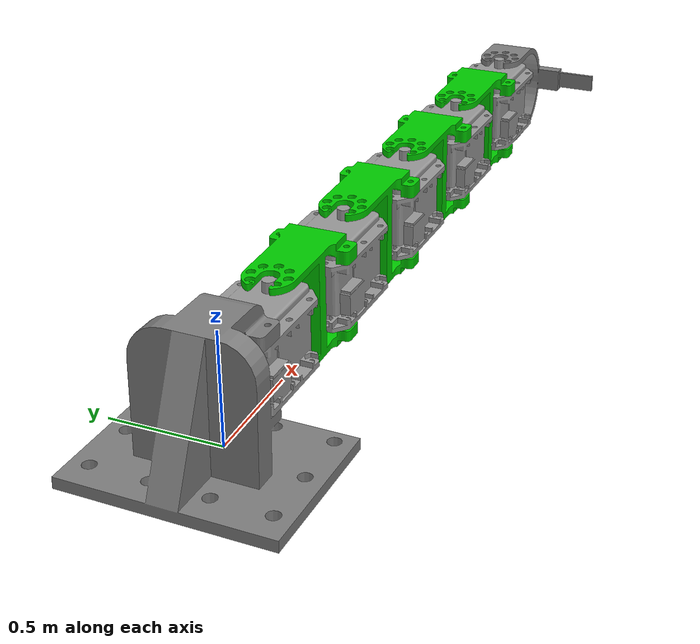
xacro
<?xml version="1.0"?>

<robot xmlns:xacro="http://www.ros.org/wiki/xacro" name="hand_tutorial">

 <xacro:macro name="default_inertial" params="mass">
    <inertial>
      <mass value="${mass}" />
      <inertia ixx="1.0" ixy="0.0" ixz="0.0" iyy="1.0" iyz="0.0" izz="1.0" />
    </inertial>
</xacro:macro>
<link name="world"/>

<link name="base_link">
	<visual>
	<geometry>
	<mesh filename="package://robot_description/meshes/ggwp.stl" />
	</geometry>
	<origin xyz="0 0 -0.05" rpy="0 0 0"/>
  <material name="grey">
    <color rgba="0.5 0.5 0.5 1.0"/>
  </material>
	</visual>
	<collision name="link_collision">
	<geometry>
	<mesh filename ="package://robot_description/meshes/ggwp.stl" />
	</geometry>
	<origin xyz="0 0 -0.05" rpy="0 0 0"/>
	</collision>
	<xacro:default_inertial mass="0.01"/>
</link>

<link name="m2m">
	<visual>
	<geometry>
	<mesh filename="package://robot_description/meshes/short.stl"/>
	</geometry>
	<origin rpy ="0 0 0" xyz="0 0 0"/>
  <material name="green">
    <color rgba="0.0 0.8 0.0 1.0"/>
  </material>
	</visual>
	<collision name="m2m_collision">
	<geometry>
	<mesh filename="package://robot_description/meshes/short.stl"/>
	</geometry>
	<origin rpy ="0 0 0" xyz="0 0 0"/>
	</collision>
	<xacro:default_inertial mass="0.01"/>
</link>

<link name="m2m01">
	<visual>
	<geometry>
	<mesh filename="package://robot_description/meshes/short.stl"/>
	</geometry>
	<origin rpy ="0 0 0" xyz="0 0 0"/>
	  <material name="green">
    <color rgba="0.0 0.8 0.0 1.0"/>
  </material>
	</visual>
	<collision name="m2m_collision01">
	<geometry>
	<mesh filename="package://robot_description/meshes/short.stl"/>
	</geometry>
	<origin rpy ="0 0 0" xyz="0 0 0"/>
	</collision>
	<xacro:default_inertial mass="0.01"/>
</link>

<link name="m2m02">
	<visual>
	<geometry>
	<mesh filename="package://robot_description/meshes/short.stl"/>
	</geometry>
	<origin rpy ="0 0 0" xyz="0 0 0"/>
	  <material name="green">
    <color rgba="0.0 0.8 0.0 1.0"/>
  </material>
	</visual>
	<collision name="m2m_collision01">
	<geometry>
	<mesh filename="package://robot_description/meshes/short.stl"/>
	</geometry>
	<origin rpy ="0 0 0" xyz="0 0 0"/>
	</collision>
	<xacro:default_inertial mass="0.01"/>
</link>

<link name="m2m03">
	<visual>
	<geometry>
	<mesh filename="package://robot_description/meshes/short.stl"/>
	</geometry>
	  <material name="green">
    <color rgba="0.0 0.8 0.0 1.0"/>
  </material>
	<origin rpy ="0 0 0" xyz="0 0 0"/>
	</visual>
	<collision name="m2m_collision01">
	<geometry>
	<mesh filename="package://robot_description/meshes/short.stl"/>
	</geometry>
	<origin rpy ="0 0 0" xyz="0 0 0"/>
	</collision>
	<xacro:default_inertial mass="0.01"/>
</link>

<link name="motor">
	<visual>
	<geometry>
	<mesh filename="package://robot_description/meshes/motor.stl"/>
	</geometry>
	<origin rpy ="0 0 3.14" xyz="0 0 0"/>
	</visual>
	<collision name="motor_collision">
	<geometry>
	<mesh filename="package://robot_description/meshes/motor.stl"/>
	</geometry>
	<origin rpy ="0 0 3.14" xyz="0 0 0"/>
	</collision>
	<xacro:default_inertial mass="0.01"/>
</link>

<link name="motor01">
	<visual>
	<geometry>
	<mesh filename="package://robot_description/meshes/motor.stl"/>
	</geometry>
	<origin rpy ="0 0 3.14" xyz="0 0 0"/>
	</visual>
	<collision name="motor_collision">
	<geometry>
	<mesh filename="package://robot_description/meshes/motor.stl"/>
	</geometry>
	<origin rpy ="0 0 3.14" xyz="0 0 0"/>
	</collision>
	<xacro:default_inertial mass="0.01"/>
</link>

<link name="motor02">
	<visual>
	<geometry>
	<mesh filename="package://robot_description/meshes/motor.stl"/>
	</geometry>
	<origin rpy ="0 0 3.14" xyz="0 0 0"/>
	</visual>
	<collision name="motor_collision">
	<geometry>
	<mesh filename="package://robot_description/meshes/motor.stl"/>
	</geometry>
	<origin rpy ="0 0 3.14" xyz="0 0 0"/>
	</collision>
	<xacro:default_inertial mass="0.01"/>
</link>

<link name="motor03">
	<visual>
	<geometry>
	<mesh filename="package://robot_description/meshes/motor.stl"/>
	</geometry>
	<origin rpy ="0 0 3.14" xyz="0 0 0"/>
	</visual>
	<collision name="motor_collision">
	<geometry>
	<mesh filename="package://robot_description/meshes/motor.stl"/>
	</geometry>
	<origin rpy ="0 0 3.14" xyz="0 0 0"/>
	</collision>
	<xacro:default_inertial mass="0.01"/>
</link>

<link name="motor04">
	<visual>
	<geometry>
	<mesh filename="package://robot_description/meshes/motor.stl"/>
	</geometry>
	<origin rpy ="0 0 3.14" xyz="0 0 0"/>
	</visual>
	<collision name="motor_collision">
	<geometry>
	<mesh filename="package://robot_description/meshes/motor.stl"/>
	</geometry>
	<origin rpy ="0 0 3.14" xyz="0 0 0"/>
	</collision>
	<xacro:default_inertial mass="0.01"/>
</link>

<link name="endeffector">
	<visual>
	<geometry>
	<mesh filename="package://robot_description/meshes/lastend.stl"/>
	</geometry>
	<origin rpy= " 0 0 3.14" xyz ="0 0 0"/>
	  <material name="grey">
    <color rgba="0.5 0.5 0.5 1.0"/>
  </material>
	</visual>
	<collision name="end_collision">
	<geometry>
	<mesh filename="package://robot_description/meshes/lastend.stl"/>
	</geometry>
	<origin rpy="0 0 3.14" xyz="0 0 0"/>
	</collision>
	<xacro:default_inertial mass="0.01"/>
</link>

<link name ="sensor_frame">
	<visual>
	<geometry>
		<box size = "0.01 0.01 0.01"/>
	</geometry>
		<origin rpy= " 0 0 0" xyz ="0 0 0"/>
  </visual>
	<collision>
		<geometry>
			<box size="0.01 0.01 0.01"/>
		</geometry>
	</collision>
</link>

<joint name="basetoworld" type="fixed">
	<parent link="world"/>
	<child link="base_link"/>
</joint>

<joint name="basetomotor" type="fixed">

	<parent link="base_link"/>
	<child link="motor"/>
	<origin xyz ="0.267 0 0.23"/>
</joint>

<joint name="Joint1" type="revolute">
	<parent link="motor"/>
	<child link="m2m"/>
	<origin xyz ="0.12 0 -0.178"/>
	<axis xyz = "0 0 1"/>
	<limit effort="1000.0" lower="-2" upper="2" velocity="0.5"/>
</joint>

<joint name="joint1_fixed" type="fixed">
	<parent link ="m2m"/>
	<child link ="motor01"/>

	<origin xyz = "0.59 0 0.17"/>
	<limit effort="0" lower = "0.0" upper="0.0" velocity="0.0"/>
</joint>

<joint name="Joint2" type="revolute">
	<parent link="motor01"/>
	<child link="m2m01"/>
	<origin xyz ="0.12 0 -0.178"/>
	<axis xyz = "0 0 1"/>
	<limit effort="1000.0" lower="-2" upper="2" velocity="0.5"/>
</joint>

<joint name="joint2_fixed" type ="fixed">
	<parent link ="m2m01"/>
	<child link="motor02"/>
	<origin xyz = "0.59 0 0.17"/>
	<limit effort="0" lower = "0.0" upper="0.0" velocity="0.0"/>
</joint>

<joint name="Joint3" type="revolute">
	<parent link="motor02"/>
	<child link="m2m02"/>
	<origin xyz ="0.12 0 -0.178"/>
	<axis xyz = "0 0 1"/>
	<limit effort="1000.0" lower="-2" upper="2" velocity="0.5"/>
</joint>

<joint name="joint3_fixed" type ="fixed">
	<parent link ="m2m02"/>
	<child link="motor03"/>
	<origin xyz = "0.59 0 0.17"/>
	<limit effort="0" lower = "0.0" upper="0.0" velocity="0.0"/>
</joint>

<joint name="Joint4" type="revolute">
	<parent link="motor03"/>
	<child link="m2m03"/>
	<origin xyz ="0.12 0 -0.178"/>
	<axis xyz = "0 0 1"/>
	<limit effort="1000.0" lower="-2" upper="2" velocity="0.5"/>
</joint>

<joint name="joint4_fixed" type ="fixed">
	<parent link ="m2m03"/>
	<child link="motor04"/>
	<origin xyz = "0.59 0 0.17"/>
	<limit effort="0" lower = "0.0" upper="0.0" velocity="0.0"/>
</joint>

<joint name="Joint5" type="revolute">
	<parent link="motor04"/>
	<child link ="endeffector"/>
	<origin xyz="0.12 -0.01 -0.178"/>
	<axis xyz = "0 0 1"/>
	<limit effort="1000.0" lower = "-2" upper="2" velocity="0.5"/>
</joint>

<joint name="sensor" type="fixed">
	<parent link ="endeffector"/>
	<child link="sensor_frame"/>
	<origin xyz = "0.48 0.005 0.23"/>
	<limit effort="0" lower = "0.0" upper="0.0" velocity="0.0"/>
</joint>

<transmission name="trans1">
  <type>transmission_interface/SimpleTransmission</type>
  <joint name="Joint1">
    <hardwareInterface>hardware_interface/PositionJointInterface</hardwareInterface>
  </joint>
  <actuator name="motor1">
    <hardwareInterface>hardware_interface/PositionJointInterface</hardwareInterface>
    <mechanicalReduction>1</mechanicalReduction>
  </actuator>
</transmission>

<transmission name="trans2">
  <type>transmission_interface/SimpleTransmission</type>
  <joint name="Joint2">
    <hardwareInterface>hardware_interface/PositionJointInterface</hardwareInterface>
  </joint>
  <actuator name="motor2">
    <hardwareInterface>hardware_interface/PositionJointInterface</hardwareInterface>
    <mechanicalReduction>1</mechanicalReduction>
  </actuator>
</transmission>

<transmission name="trans3">
  <type>transmission_interface/SimpleTransmission</type>
  <joint name="Joint3">
    <hardwareInterface>hardware_interface/PositionJointInterface</hardwareInterface>
  </joint>
  <actuator name="motor3">
    <hardwareInterface>hardware_interface/PositionJointInterface</hardwareInterface>
    <mechanicalReduction>1</mechanicalReduction>
  </actuator>
</transmission>

<transmission name="trans4">
  <type>transmission_interface/SimpleTransmission</type>
  <joint name="Joint4">
    <hardwareInterface>hardware_interface/PositionJointInterface</hardwareInterface>
  </joint>
  <actuator name="motor4">
    <hardwareInterface>hardware_interface/PositionJointInterface</hardwareInterface>
    <mechanicalReduction>1</mechanicalReduction>
  </actuator>
</transmission>

<transmission name="trans5">
  <type>transmission_interface/SimpleTransmission</type>
  <joint name="Joint5">
    <hardwareInterface>hardware_interface/PositionJointInterface</hardwareInterface>
  </joint>
  <actuator name="motor5">
    <hardwareInterface>hardware_interface/PositionJointInterface</hardwareInterface>
    <mechanicalReduction>1</mechanicalReduction>
  </actuator>
</transmission>

<gazebo reference="m2m">
       <material>Gazebo/Green</material>
</gazebo>

<gazebo reference="m2m01">
       <material>Gazebo/Green</material>
</gazebo>

<gazebo reference="m2m02">
       <material>Gazebo/Green</material>
</gazebo>

<gazebo reference="m2m03">
       <material>Gazebo/Green</material>
</gazebo>

<gazebo reference="base_link">
       <material>Gazebo/Grey</material>
</gazebo>

<gazebo reference="motor">
       <material>Gazebo/Grey</material>
</gazebo>

<gazebo reference="motor01">
       <material>Gazebo/Grey</material>
</gazebo>

<gazebo reference="motor02">
       <material>Gazebo/Grey</material>
</gazebo>

<gazebo reference="motor03">
       <material>Gazebo/Grey</material>
</gazebo>

<gazebo reference="motor04">
       <material>Gazebo/Grey</material>
</gazebo>

<gazebo reference="endeffector">
       <material>Gazebo/Grey</material>
</gazebo>

 <!-- ros_control plugin -->
  <gazebo>
    <plugin name="gazebo_ros_control" filename="libgazebo_ros_control.so">
      <robotNamespace>/snake</robotNamespace>

    </plugin>
  </gazebo>
</robot>
